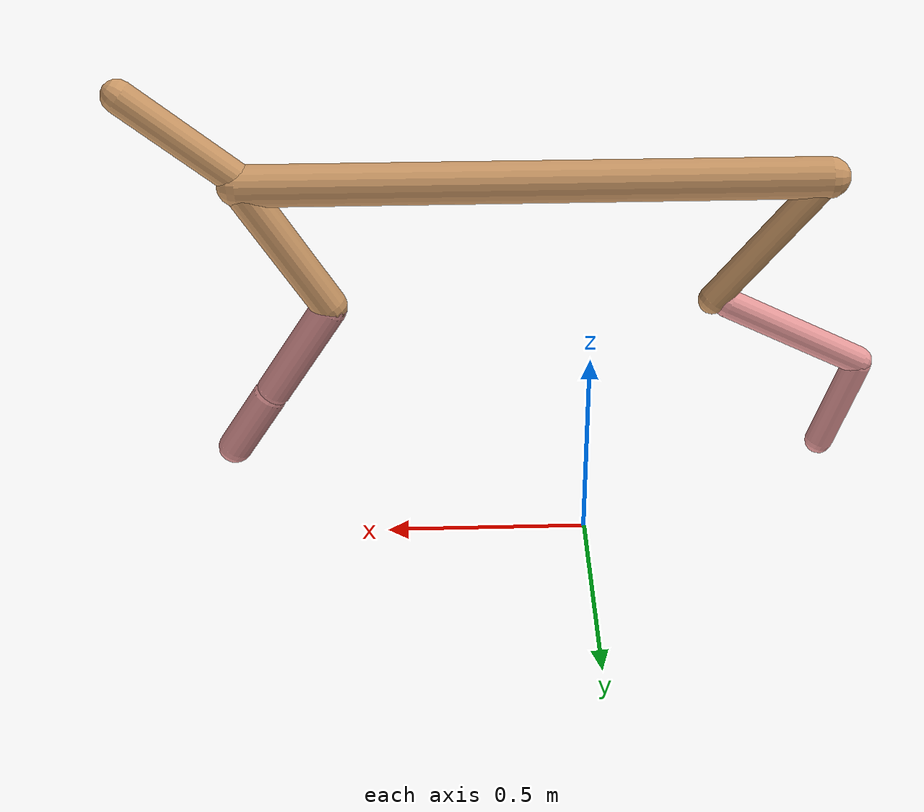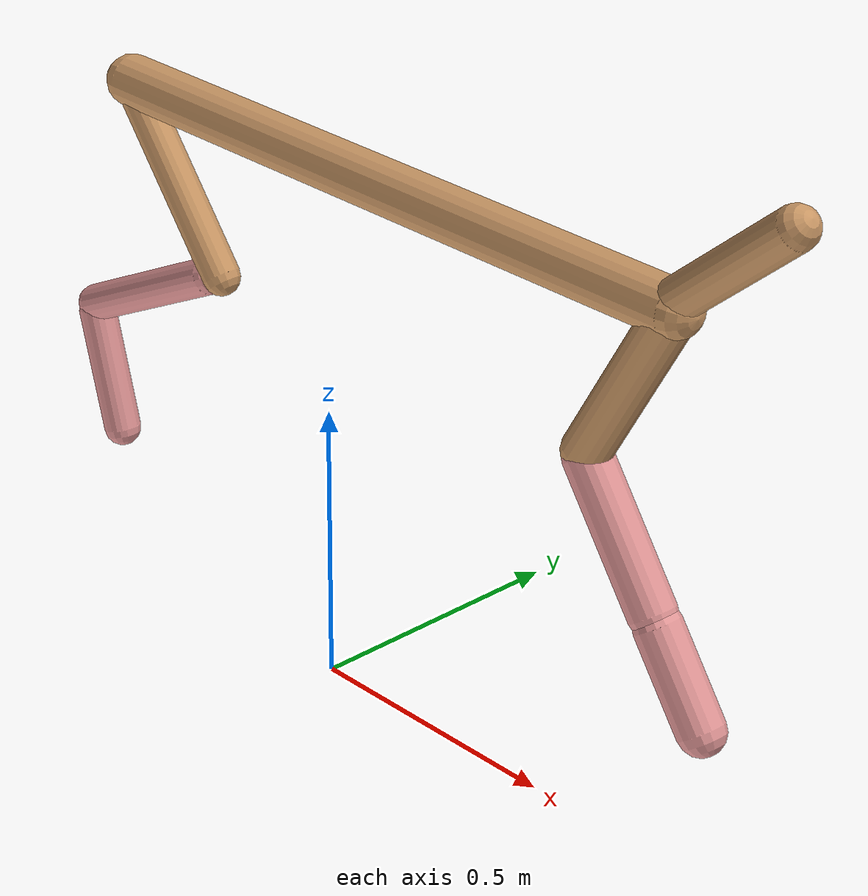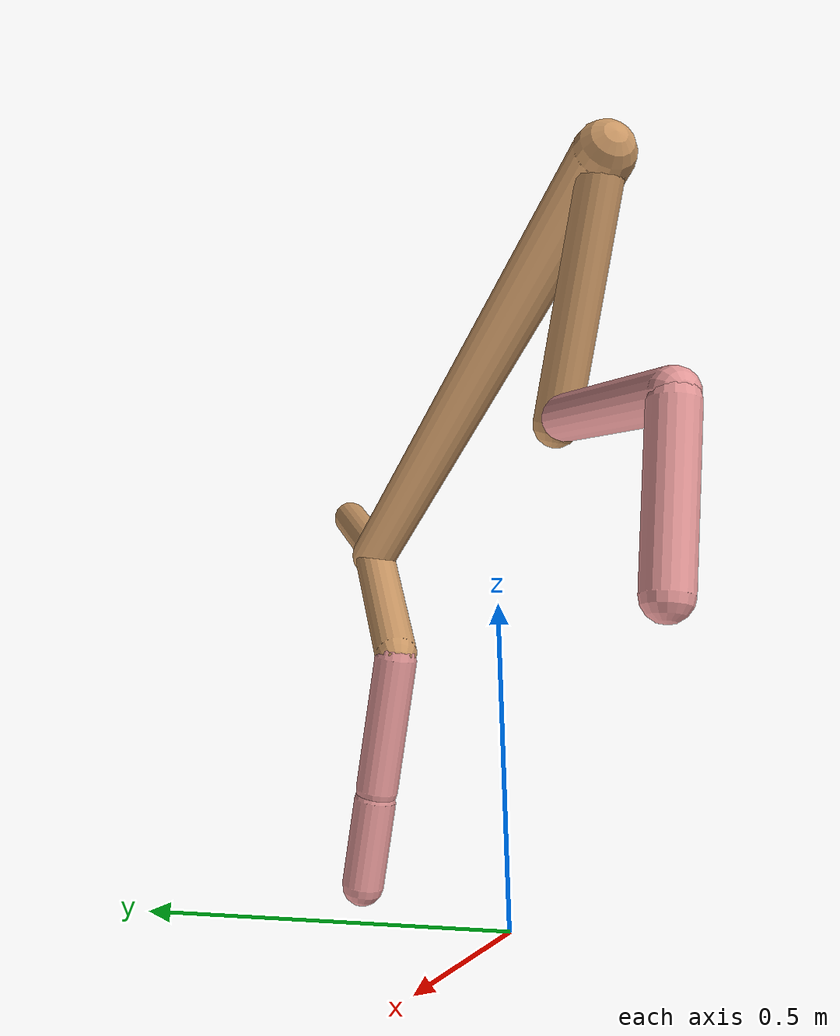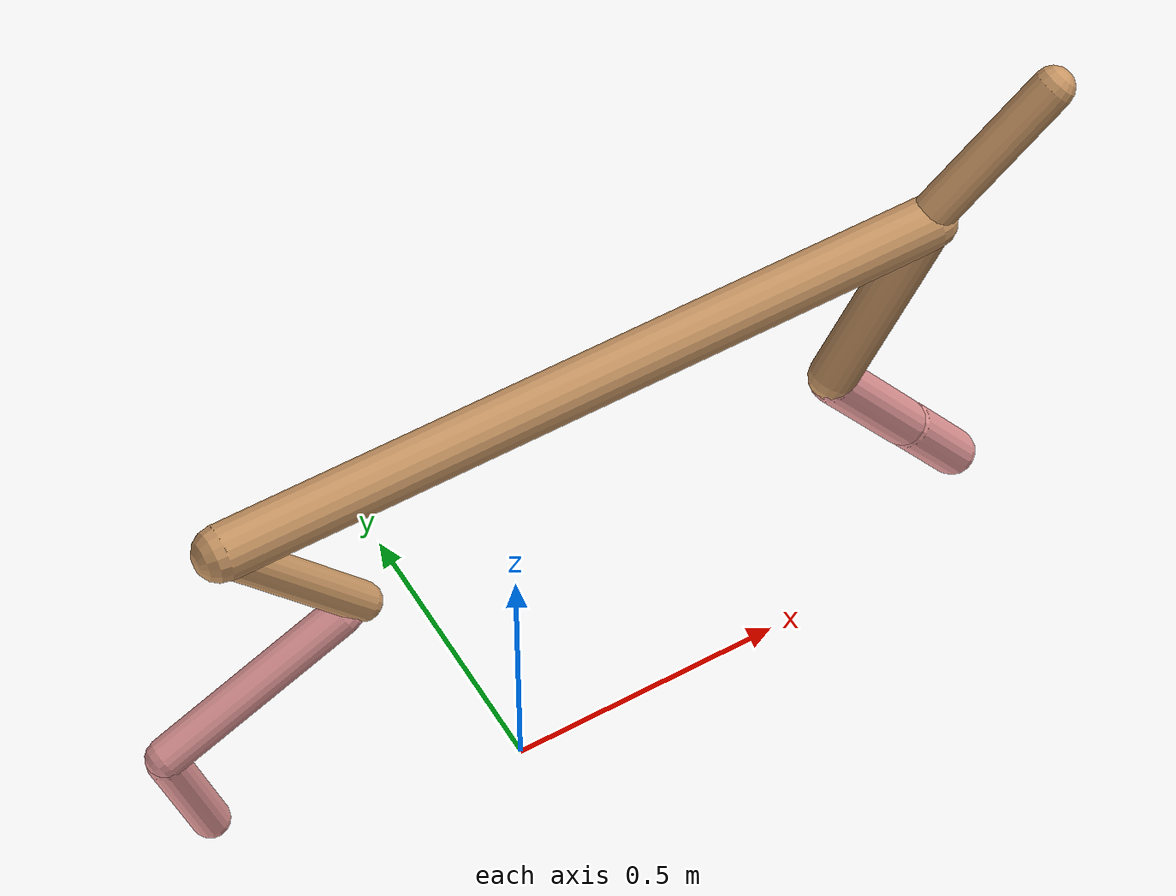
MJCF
<mujoco model="cheetah">
  <compiler angle="radian" coordinate="local" inertiafromgeom="true" settotalmass="14" />
  <default>
    <joint armature=".1" damping=".01" limited="true" solimplimit="0 .8 .03" solreflimit=".02 1" stiffness="8" />
    <geom conaffinity="0" condim="3" contype="1" friction="0.8 .1 .1" rgba="0.8 0.6 .4 1" solimp="0.0 0.8 0.01" solref="0.02 1" />
    <motor ctrllimited="true" ctrlrange="-1 1" />
  </default>
  <size nstack="300000" nuser_geom="1" />
  <option gravity="0 0 -9.81" timestep="0.01" />
  <worldbody>
    <body name="torso" pos="0.0 0.0 0.9487608703014762">
      <joint armature="0" axis="1 0 0" damping="0" limited="false" name="ignorex" pos="0 0 0" stiffness="0" type="slide" />
      <joint armature="0" axis="0 0 1" damping="0" limited="false" name="ignorez" pos="0 0 0" stiffness="0" type="slide" />
      <joint armature="0" axis="0 1 0" damping="0" limited="false" name="ignorey" pos="0 0 0" stiffness="0" type="hinge" />
      <geom fromto="-0.5 0.0 0.0 0.7624195396583884 0.0 0.0" name="torso" size="0.045267882901712235" type="capsule" />
      <geom axisangle="0 1 0 .87" name="head" pos="0.8624195396583884 0.0 0.1" size="0.035709807013720146 0.15" type="capsule" />

      <body name="bthigh" pos="-.5 0 0">
        <joint axis="0 1 0" damping="6" name="bthigh" pos="0 0 0" range="-.52 1.05" stiffness="240" type="hinge" />
        <geom axisangle="0 1 0 -3.8" name="bthigh" pos="0.1186376830742932 0.0 -0.15422898799658116" size="0.03326904486802062 0.17556807304552038" type="capsule" />
        <body name="bshin" pos="0.19727536614858643 0.0 -0.2984579759931623">
          <joint axis="0 1 0" damping="4.5" name="bshin" pos="0 0 0" range="-.785 .785" stiffness="180" type="hinge" />
          <geom axisangle="0 1 0 -2.03" name="bshin" pos="-0.1682837059052259 0.0 -0.08414185295261295" rgba="0.9 0.6 0.6 1" size="0.03326904486802062 0.18162214452984868" type="capsule" />
          <body name="bfoot" pos="-0.3365674118104518 0.0 -0.1682837059052259">
            <joint axis="0 1 0" damping="3" name="bfoot" pos="0 0 0" range="-.4 .785" stiffness="120" type="hinge" />
            <geom axisangle="0 1 0 -.27" name="bfoot" pos="0.0358551887369932 0.0 -0.11593177691627803" rgba="0.9 0.6 0.6 1" size="0.03326904486802062 0.11381654390537184" type="capsule" />
            <inertial mass="10" />
          </body>
        </body>
      </body>
      <body name="fthigh" pos="0.7624195396583884 0.0 0.0">
        <joint axis="0 1 0" damping="4.5" name="fthigh" pos="0 0 0" range="-1.5 0.8" stiffness="180" type="hinge" />
        <geom axisangle="0 1 0 .52" name="fthigh" pos="-0.08631623061380943 0.0 -0.1479706810522447" size="0.04055948928172881 0.16538175998875623" type="capsule" />
        <body name="fshin" pos="-0.17263246122761886 0.0 -0.2959413621044894">
          <joint axis="0 1 0" damping="3" name="fshin" pos="0 0 0" range="-1.2 1.1" stiffness="120" type="hinge" />
          <geom axisangle="0 1 0 -.6" name="fshin" pos="0.08011035147796113 0.0 -0.11092202512333077" rgba="0.9 0.6 0.6 1" size="0.04055948928172881 0.13180801923915908" type="capsule" />
          <body name="ffoot" pos="0.16022070295592225 0.0 -0.22184405024666154">
            <joint axis="0 1 0" damping="1.5" name="ffoot" pos="0 0 0" range="-3.1 -0.3" stiffness="60" type="hinge" />
            <geom axisangle="0 1 0 -.6" name="ffoot" pos="0.05421614870211139 0.0 -0.08433623131439551" rgba="0.9 0.6 0.6 1" size="0.04055948928172881 0.0870430315730296" type="capsule" />
            <inertial mass="10" />
          </body>
        </body>
      </body>
    </body>
  </worldbody>
  <actuator>
    <motor gear="120" joint="bthigh" name="bthigh" />
    <motor gear="90" joint="bshin" name="bshin" />
    <motor gear="60" joint="bfoot" name="bfoot" />
    <motor gear="120" joint="fthigh" name="fthigh" />
    <motor gear="60" joint="fshin" name="fshin" />
    <motor gear="30" joint="ffoot" name="ffoot" />
  </actuator>
</mujoco>
